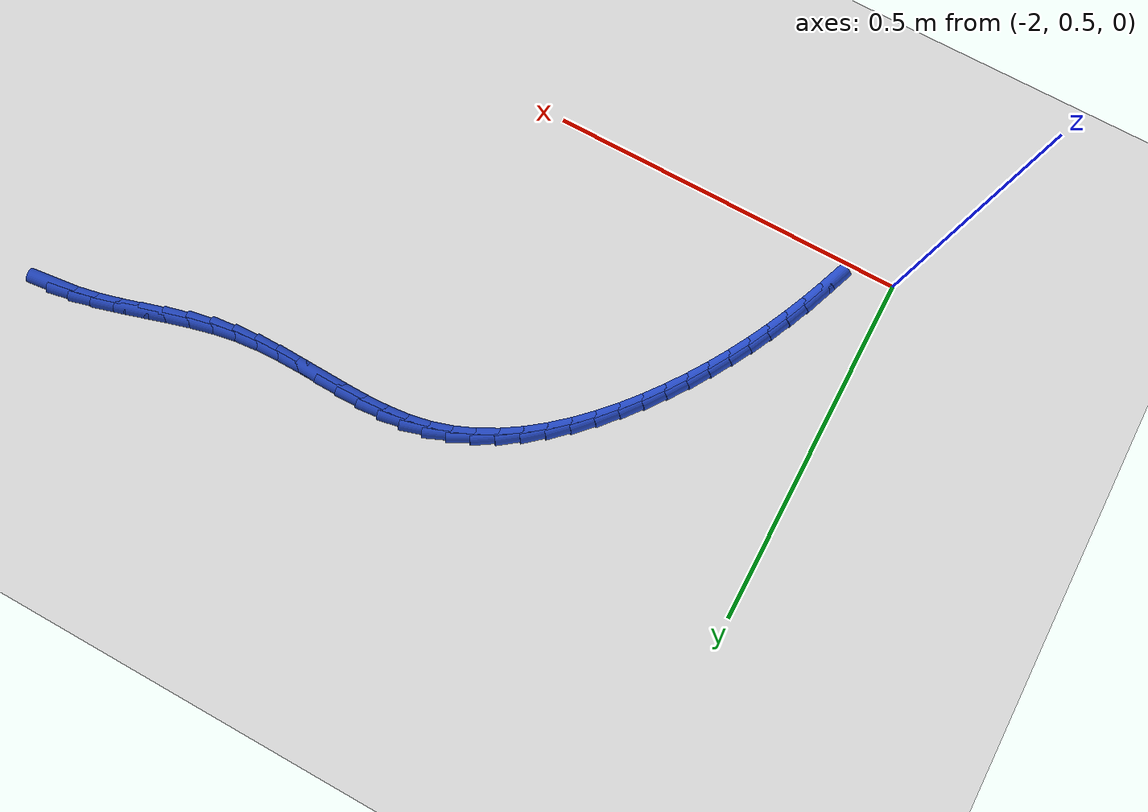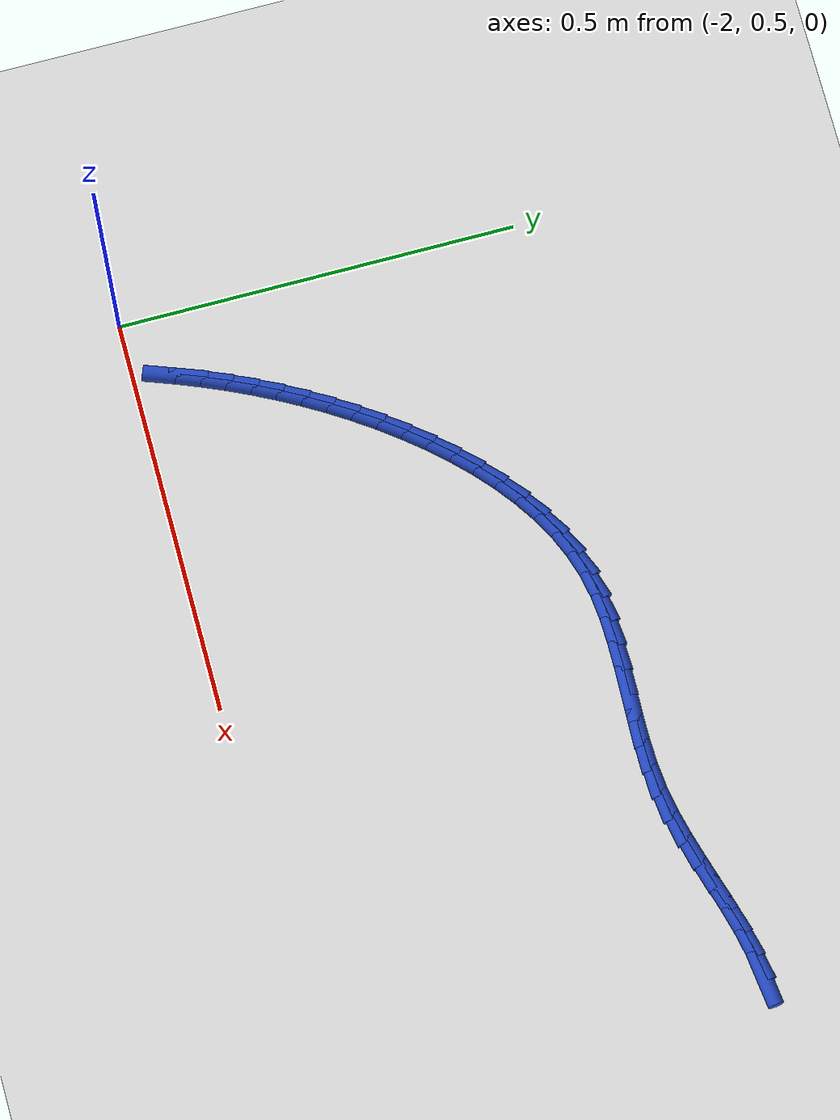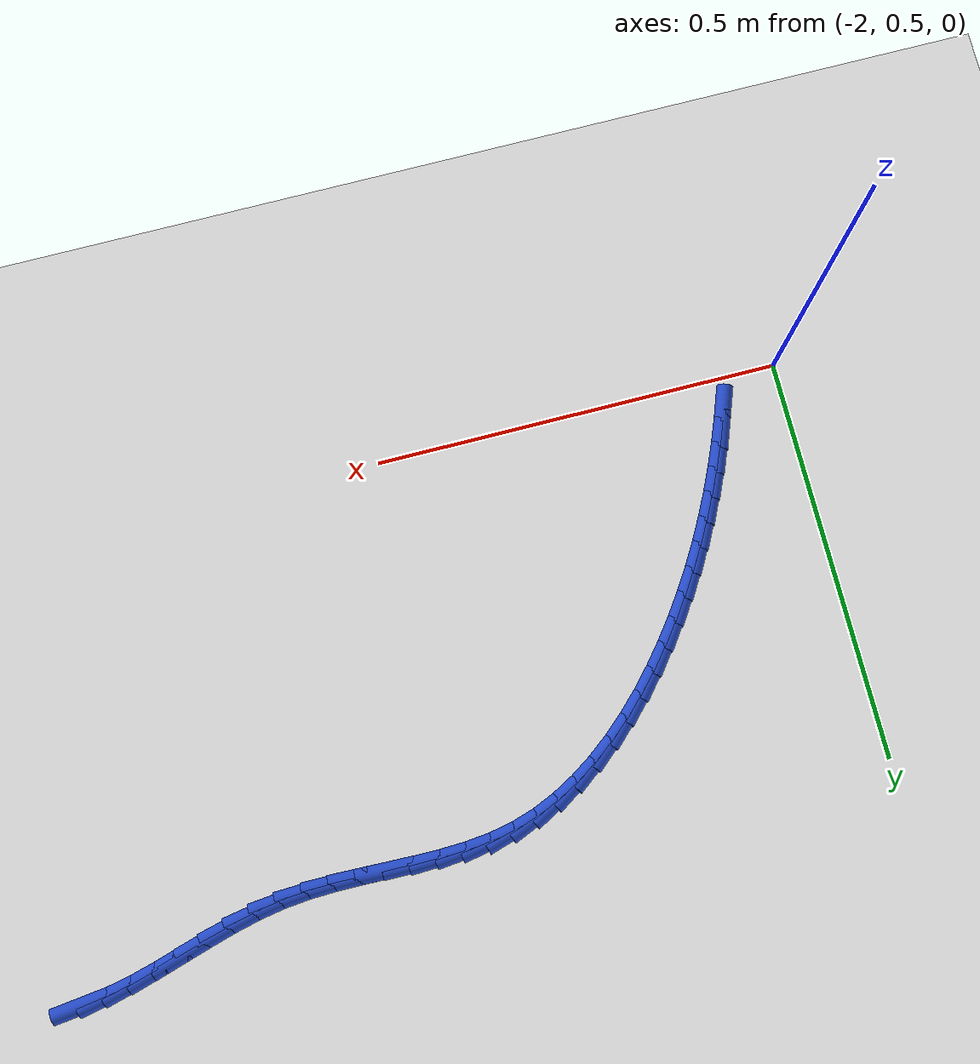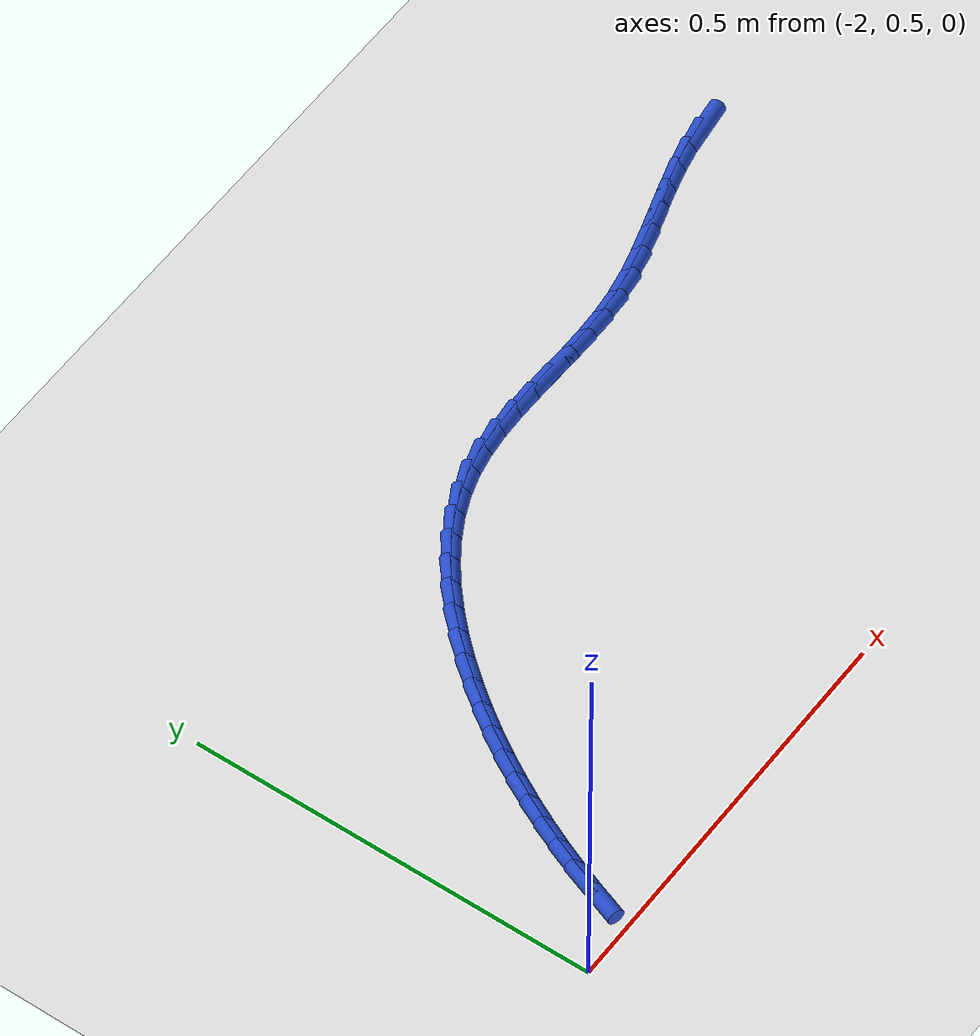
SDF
<sdf version="1.6">
 <world name="default">
  <model name="ground_plane">
   <static>1</static>
   <link name="link">
    <collision name="collision">
     <geometry><plane><normal>0 0 1</normal><size>100 100</size></plane></geometry>
     <surface><friction><ode><mu>100</mu><mu2>50</mu2></ode></friction></surface>
    </collision>
    <visual name="visual">
     <cast_shadows>0</cast_shadows>
     <geometry><plane><normal>0 0 1</normal><size>100 100</size></plane></geometry>
     <material>
      <script><uri>file://media/materials/scripts/gazebo.material</uri><name>Gazebo/WhiteGlow</name></script>
     </material>
    </visual>
   </link>
  </model>
  <model name="line">
   <link name="link_51">
    <pose>-1.0199865515981614 1.0414922336713381 0.01 0 1.57 0.12058958994074306</pose>
    <collision name="collision">
     <geometry><cylinder><radius>0.01</radius><length>0.08</length></cylinder></geometry>
    </collision>
    <visual name="visual">
     <material>
      <script><name>Gazebo/Blue</name><uri>file://media/materials/scripts/gazebo.material</uri></script>
     </material>
     <geometry><cylinder><radius>0.01</radius><length>0.08</length></cylinder></geometry>
    </visual>
   </link>
   <link name="link_52">
    <pose>-1.0499982752725525 1.0378554867647123 0.01 0 1.57 0.20406008757709</pose>
    <collision name="collision">
     <geometry><cylinder><radius>0.01</radius><length>0.08</length></cylinder></geometry>
    </collision>
    <visual name="visual">
     <material>
      <script><name>Gazebo/Blue</name><uri>file://media/materials/scripts/gazebo.material</uri></script>
     </material>
     <geometry><cylinder><radius>0.01</radius><length>0.08</length></cylinder></geometry>
    </visual>
   </link>
   <link name="link_53">
    <pose>-1.0802422595084933 1.0315967826768655 0.01 0 1.57 0.2598121670030946</pose>
    <collision name="collision">
     <geometry><cylinder><radius>0.01</radius><length>0.08</length></cylinder></geometry>
    </collision>
    <visual name="visual">
     <material>
      <script><name>Gazebo/Blue</name><uri>file://media/materials/scripts/gazebo.material</uri></script>
     </material>
     <geometry><cylinder><radius>0.01</radius><length>0.08</length></cylinder></geometry>
    </visual>
   </link>
   <link name="link_54">
    <pose>-1.1107249044114034 1.0234938730136556 0.01 0 1.57 0.28999472140376986</pose>
    <collision name="collision">
     <geometry><cylinder><radius>0.01</radius><length>0.08</length></cylinder></geometry>
    </collision>
    <visual name="visual">
     <material>
      <script><name>Gazebo/Blue</name><uri>file://media/materials/scripts/gazebo.material</uri></script>
     </material>
     <geometry><cylinder><radius>0.01</radius><length>0.08</length></cylinder></geometry>
    </visual>
   </link>
   <link name="link_55">
    <pose>-1.141452610086704 1.0143245093809423 0.01 0 1.57 0.2963157928271445</pose>
    <collision name="collision">
     <geometry><cylinder><radius>0.01</radius><length>0.08</length></cylinder></geometry>
    </collision>
    <visual name="visual">
     <material>
      <script><name>Gazebo/Blue</name><uri>file://media/materials/scripts/gazebo.material</uri></script>
     </material>
     <geometry><cylinder><radius>0.01</radius><length>0.08</length></cylinder></geometry>
    </visual>
   </link>
   <link name="link_56">
    <pose>-1.172431776639817 1.004866443384584 0.01 0 1.57 0.2796059381843281</pose>
    <collision name="collision">
     <geometry><cylinder><radius>0.01</radius><length>0.08</length></cylinder></geometry>
    </collision>
    <visual name="visual">
     <material>
      <script><name>Gazebo/Blue</name><uri>file://media/materials/scripts/gazebo.material</uri></script>
     </material>
     <geometry><cylinder><radius>0.01</radius><length>0.08</length></cylinder></geometry>
    </visual>
   </link>
   <link name="link_57">
    <pose>-1.2036688041761627 0.9958974266304397 0.01 0 1.57 0.23980004949641215</pose>
    <collision name="collision">
     <geometry><cylinder><radius>0.01</radius><length>0.08</length></cylinder></geometry>
    </collision>
    <visual name="visual">
     <material>
      <script><name>Gazebo/Blue</name><uri>file://media/materials/scripts/gazebo.material</uri></script>
     </material>
     <geometry><cylinder><radius>0.01</radius><length>0.08</length></cylinder></geometry>
    </visual>
   </link>
   <link name="link_58">
    <pose>-1.2351700928011624 0.9881952107243684 0.01 0 1.57 0.17622768772882644</pose>
    <collision name="collision">
     <geometry><cylinder><radius>0.01</radius><length>0.08</length></cylinder></geometry>
    </collision>
    <visual name="visual">
     <material>
      <script><name>Gazebo/Blue</name><uri>file://media/materials/scripts/gazebo.material</uri></script>
     </material>
     <geometry><cylinder><radius>0.01</radius><length>0.08</length></cylinder></geometry>
    </visual>
   </link>
   <link name="link_59">
    <pose>-1.2669420320097329 0.9825374239374634 0.01 0 1.57 0.09775474044704364</pose>
    <collision name="collision">
     <geometry><cylinder><radius>0.01</radius><length>0.08</length></cylinder></geometry>
    </collision>
    <visual name="visual">
     <material>
      <script><name>Gazebo/Blue</name><uri>file://media/materials/scripts/gazebo.material</uri></script>
     </material>
     <geometry><cylinder><radius>0.01</radius><length>0.08</length></cylinder></geometry>
    </visual>
   </link>
   <link name="link_60">
    <pose>-1.298964801561053 0.9793970368646946 0.01 0 1.57 0.03450498983983951</pose>
    <collision name="collision">
     <geometry><cylinder><radius>0.01</radius><length>0.08</length></cylinder></geometry>
    </collision>
    <visual name="visual">
     <material>
      <script><name>Gazebo/Blue</name><uri>file://media/materials/scripts/gazebo.material</uri></script>
     </material>
     <geometry><cylinder><radius>0.01</radius><length>0.08</length></cylinder></geometry>
    </visual>
   </link>
   <link name="link_61">
    <pose>-1.3311359502196987 0.9782865309514278 0.01 0 1.57 -0.007547643432789391</pose>
    <collision name="collision">
     <geometry><cylinder><radius>0.01</radius><length>0.08</length></cylinder></geometry>
    </collision>
    <visual name="visual">
     <material>
      <script><name>Gazebo/Blue</name><uri>file://media/materials/scripts/gazebo.material</uri></script>
     </material>
     <geometry><cylinder><radius>0.01</radius><length>0.08</length></cylinder></geometry>
    </visual>
   </link>
   <link name="link_62">
    <pose>-1.3633367832600192 0.978529575972648 0.01 0 1.57 -0.02865031762360676</pose>
    <collision name="collision">
     <geometry><cylinder><radius>0.01</radius><length>0.08</length></cylinder></geometry>
    </collision>
    <visual name="visual">
     <material>
      <script><name>Gazebo/Blue</name><uri>file://media/materials/scripts/gazebo.material</uri></script>
     </material>
     <geometry><cylinder><radius>0.01</radius><length>0.08</length></cylinder></geometry>
    </visual>
   </link>
   <link name="link_63">
    <pose>-1.3954486059563636 0.9794498417033402 0.01 0 1.57 -0.028864624503904285</pose>
    <collision name="collision">
     <geometry><cylinder><radius>0.01</radius><length>0.08</length></cylinder></geometry>
    </collision>
    <visual name="visual">
     <material>
      <script><name>Gazebo/Blue</name><uri>file://media/materials/scripts/gazebo.material</uri></script>
     </material>
     <geometry><cylinder><radius>0.01</radius><length>0.08</length></cylinder></geometry>
    </visual>
   </link>
   <link name="link_64">
    <pose>-1.4273527235830814 0.9803709979184891 0.01 0 1.57 -0.00778116761907445</pose>
    <collision name="collision">
     <geometry><cylinder><radius>0.01</radius><length>0.08</length></cylinder></geometry>
    </collision>
    <visual name="visual">
     <material>
      <script><name>Gazebo/Blue</name><uri>file://media/materials/scripts/gazebo.material</uri></script>
     </material>
     <geometry><cylinder><radius>0.01</radius><length>0.08</length></cylinder></geometry>
    </visual>
   </link>
   <link name="link_65">
    <pose>-1.4589304414145206 0.98061671439308 0.01 0 1.57 0.035512217725743776</pose>
    <collision name="collision">
     <geometry><cylinder><radius>0.01</radius><length>0.08</length></cylinder></geometry>
    </collision>
    <visual name="visual">
     <material>
      <script><name>Gazebo/Blue</name><uri>file://media/materials/scripts/gazebo.material</uri></script>
     </material>
     <geometry><cylinder><radius>0.01</radius><length>0.08</length></cylinder></geometry>
    </visual>
   </link>
   <link name="link_66">
    <pose>-1.4900630647250308 0.9795106609020972 0.01 0 1.57 0.10217074075707856</pose>
    <collision name="collision">
     <geometry><cylinder><radius>0.01</radius><length>0.08</length></cylinder></geometry>
    </collision>
    <visual name="visual">
     <material>
      <script><name>Gazebo/Blue</name><uri>file://media/materials/scripts/gazebo.material</uri></script>
     </material>
     <geometry><cylinder><radius>0.01</radius><length>0.08</length></cylinder></geometry>
    </visual>
   </link>
   <link name="link_67">
    <pose>-1.5206318987889609 0.9763765072205262 0.01 0 1.57 0.1929296391288399</pose>
    <collision name="collision">
     <geometry><cylinder><radius>0.01</radius><length>0.08</length></cylinder></geometry>
    </collision>
    <visual name="visual">
     <material>
      <script><name>Gazebo/Blue</name><uri>file://media/materials/scripts/gazebo.material</uri></script>
     </material>
     <geometry><cylinder><radius>0.01</radius><length>0.08</length></cylinder></geometry>
    </visual>
   </link>
   <link name="link_68">
    <pose>-1.5505182488807956 0.9705379231250553 0.01 0 1.57 0.30175872498771883</pose>
    <collision name="collision">
     <geometry><cylinder><radius>0.01</radius><length>0.08</length></cylinder></geometry>
    </collision>
    <visual name="visual">
     <material>
      <script><name>Gazebo/Blue</name><uri>file://media/materials/scripts/gazebo.material</uri></script>
     </material>
     <geometry><cylinder><radius>0.01</radius><length>0.08</length></cylinder></geometry>
    </visual>
   </link>
   <link name="link_69">
    <pose>-1.5796163639013159 0.9614807182559576 0.01 0 1.57 0.40597323569280314</pose>
    <collision name="collision">
     <geometry><cylinder><radius>0.01</radius><length>0.08</length></cylinder></geometry>
    </collision>
    <visual name="visual">
     <material>
      <script><name>Gazebo/Blue</name><uri>file://media/materials/scripts/gazebo.material</uri></script>
     </material>
     <geometry><cylinder><radius>0.01</radius><length>0.08</length></cylinder></geometry>
    </visual>
   </link>
   <link name="link_70">
    <pose>-1.6078719274258895 0.949335004779747 0.01 0 1.57 0.49974643358655646</pose>
    <collision name="collision">
     <geometry><cylinder><radius>0.01</radius><length>0.08</length></cylinder></geometry>
    </collision>
    <visual name="visual">
     <material>
      <script><name>Gazebo/Blue</name><uri>file://media/materials/scripts/gazebo.material</uri></script>
     </material>
     <geometry><cylinder><radius>0.01</radius><length>0.08</length></cylinder></geometry>
    </visual>
   </link>
   <link name="link_71">
    <pose>-1.635243397297775 0.9343909132384747 0.01 0 1.57 0.5833226593509513</pose>
    <collision name="collision">
     <geometry><cylinder><radius>0.01</radius><length>0.08</length></cylinder></geometry>
    </collision>
    <visual name="visual">
     <material>
      <script><name>Gazebo/Blue</name><uri>file://media/materials/scripts/gazebo.material</uri></script>
     </material>
     <geometry><cylinder><radius>0.01</radius><length>0.08</length></cylinder></geometry>
    </visual>
   </link>
   <link name="link_72">
    <pose>-1.6616892313602332 0.9169385741741927 0.01 0 1.57 0.657456033470688</pose>
    <collision name="collision">
     <geometry><cylinder><radius>0.01</radius><length>0.08</length></cylinder></geometry>
    </collision>
    <visual name="visual">
     <material>
      <script><name>Gazebo/Blue</name><uri>file://media/materials/scripts/gazebo.material</uri></script>
     </material>
     <geometry><cylinder><radius>0.01</radius><length>0.08</length></cylinder></geometry>
    </visual>
   </link>
   <link name="link_73">
    <pose>-1.6871678874565232 0.897268118128952 0.01 0 1.57 0.7231475810018252</pose>
    <collision name="collision">
     <geometry><cylinder><radius>0.01</radius><length>0.08</length></cylinder></geometry>
    </collision>
    <visual name="visual">
     <material>
      <script><name>Gazebo/Blue</name><uri>file://media/materials/scripts/gazebo.material</uri></script>
     </material>
     <geometry><cylinder><radius>0.01</radius><length>0.08</length></cylinder></geometry>
    </visual>
   </link>
   <link name="link_74">
    <pose>-1.7116378234299043 0.8756696756448051 0.01 0 1.57 0.7814678119261341</pose>
    <collision name="collision">
     <geometry><cylinder><radius>0.01</radius><length>0.08</length></cylinder></geometry>
    </collision>
    <visual name="visual">
     <material>
      <script><name>Gazebo/Blue</name><uri>file://media/materials/scripts/gazebo.material</uri></script>
     </material>
     <geometry><cylinder><radius>0.01</radius><length>0.08</length></cylinder></geometry>
    </visual>
   </link>
   <link name="link_75">
    <pose>-1.735057497123637 0.852433377263803 0.01 0 1.57 0.8334545786287033</pose>
    <collision name="collision">
     <geometry><cylinder><radius>0.01</radius><length>0.08</length></cylinder></geometry>
    </collision>
    <visual name="visual">
     <material>
      <script><name>Gazebo/Blue</name><uri>file://media/materials/scripts/gazebo.material</uri></script>
     </material>
     <geometry><cylinder><radius>0.01</radius><length>0.08</length></cylinder></geometry>
    </visual>
   </link>
   <link name="link_76">
    <pose>-1.7573853663809802 0.8278493535279975 0.01 0 1.57 0.8800644468519161</pose>
    <collision name="collision">
     <geometry><cylinder><radius>0.01</radius><length>0.08</length></cylinder></geometry>
    </collision>
    <visual name="visual">
     <material>
      <script><name>Gazebo/Blue</name><uri>file://media/materials/scripts/gazebo.material</uri></script>
     </material>
     <geometry><cylinder><radius>0.01</radius><length>0.08</length></cylinder></geometry>
    </visual>
   </link>
   <link name="link_77">
    <pose>-1.7785798890451936 0.8022077349794403 0.01 0 1.57 0.9221575945823174</pose>
    <collision name="collision">
     <geometry><cylinder><radius>0.01</radius><length>0.08</length></cylinder></geometry>
    </collision>
    <visual name="visual">
     <material>
      <script><name>Gazebo/Blue</name><uri>file://media/materials/scripts/gazebo.material</uri></script>
     </material>
     <geometry><cylinder><radius>0.01</radius><length>0.08</length></cylinder></geometry>
    </visual>
   </link>
   <link name="link_78">
    <pose>-1.7985995229595368 0.7757986521601828 0.01 0 1.57 0.9606672399310447</pose>
    <collision name="collision">
     <geometry><cylinder><radius>0.01</radius><length>0.08</length></cylinder></geometry>
    </collision>
    <visual name="visual">
     <material>
      <script><name>Gazebo/Blue</name><uri>file://media/materials/scripts/gazebo.material</uri></script>
     </material>
     <geometry><cylinder><radius>0.01</radius><length>0.08</length></cylinder></geometry>
    </visual>
   </link>
   <link name="link_79">
    <pose>-1.8174095419860026 0.7488930271794847 0.01 0 1.57 0.9974675344344045</pose>
    <collision name="collision">
     <geometry><cylinder><radius>0.01</radius><length>0.08</length></cylinder></geometry>
    </collision>
    <visual name="visual">
     <material>
      <script><name>Gazebo/Blue</name><uri>file://media/materials/scripts/gazebo.material</uri></script>
     </material>
     <geometry><cylinder><radius>0.01</radius><length>0.08</length></cylinder></geometry>
    </visual>
   </link>
   <link name="link_80">
    <pose>-1.8350334329876041 0.7215977302914656 0.01 0 1.57 1.033199192522835</pose>
    <collision name="collision">
     <geometry><cylinder><radius>0.01</radius><length>0.08</length></cylinder></geometry>
    </collision>
    <visual name="visual">
     <material>
      <script><name>Gazebo/Blue</name><uri>file://media/materials/scripts/gazebo.material</uri></script>
     </material>
     <geometry><cylinder><radius>0.01</radius><length>0.08</length></cylinder></geometry>
    </visual>
   </link>
   <link name="link_81">
    <pose>-1.8515241915816556 0.6939364722188555 0.01 0 1.57 1.0677183187328891</pose>
    <collision name="collision">
     <geometry><cylinder><radius>0.01</radius><length>0.08</length></cylinder></geometry>
    </collision>
    <visual name="visual">
     <material>
      <script><name>Gazebo/Blue</name><uri>file://media/materials/scripts/gazebo.material</uri></script>
     </material>
     <geometry><cylinder><radius>0.01</radius><length>0.08</length></cylinder></geometry>
    </visual>
   </link>
   <link name="link_82">
    <pose>-1.8669350437255328 0.6659323145559439 0.01 0 1.57 1.1008932156570137</pose>
    <collision name="collision">
     <geometry><cylinder><radius>0.01</radius><length>0.08</length></cylinder></geometry>
    </collision>
    <visual name="visual">
     <material>
      <script><name>Gazebo/Blue</name><uri>file://media/materials/scripts/gazebo.material</uri></script>
     </material>
     <geometry><cylinder><radius>0.01</radius><length>0.08</length></cylinder></geometry>
    </visual>
   </link>
   <link name="link_83">
    <pose>-1.881319215376612 0.6376083188970217 0.01 0 1.57 1.132610733242506</pose>
    <collision name="collision">
     <geometry><cylinder><radius>0.01</radius><length>0.08</length></cylinder></geometry>
    </collision>
    <visual name="visual">
     <material>
      <script><name>Gazebo/Blue</name><uri>file://media/materials/scripts/gazebo.material</uri></script>
     </material>
     <geometry><cylinder><radius>0.01</radius><length>0.08</length></cylinder></geometry>
    </visual>
   </link>
   <link name="link_84">
    <pose>-1.8947299324922697 0.6089875468363783 0.01 0 1.57 1.1627762389920493</pose>
    <collision name="collision">
     <geometry><cylinder><radius>0.01</radius><length>0.08</length></cylinder></geometry>
    </collision>
    <visual name="visual">
     <material>
      <script><name>Gazebo/Blue</name><uri>file://media/materials/scripts/gazebo.material</uri></script>
     </material>
     <geometry><cylinder><radius>0.01</radius><length>0.08</length></cylinder></geometry>
    </visual>
   </link>
   <link name="link_85">
    <pose>-1.9072204210298813 0.5800930599683034 0.01 0 1.57 1.191312899223061</pose>
    <collision name="collision">
     <geometry><cylinder><radius>0.01</radius><length>0.08</length></cylinder></geometry>
    </collision>
    <visual name="visual">
     <material>
      <script><name>Gazebo/Blue</name><uri>file://media/materials/scripts/gazebo.material</uri></script>
     </material>
     <geometry><cylinder><radius>0.01</radius><length>0.08</length></cylinder></geometry>
    </visual>
   </link>
   <link name="link_86">
    <pose>-1.9188439069468233 0.5509479198870877 0.01 0 1.57 1.2181604101614532</pose>
    <collision name="collision">
     <geometry><cylinder><radius>0.01</radius><length>0.08</length></cylinder></geometry>
    </collision>
    <visual name="visual">
     <material>
      <script><name>Gazebo/Blue</name><uri>file://media/materials/scripts/gazebo.material</uri></script>
     </material>
     <geometry><cylinder><radius>0.01</radius><length>0.08</length></cylinder></geometry>
    </visual>
   </link>
  </model>
 </world>
</sdf>
